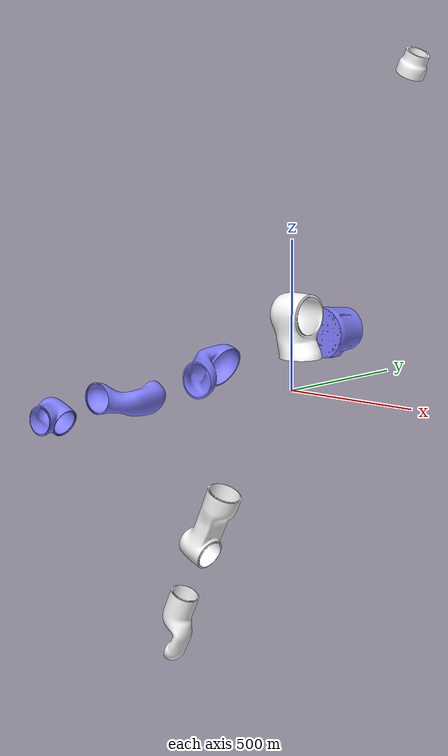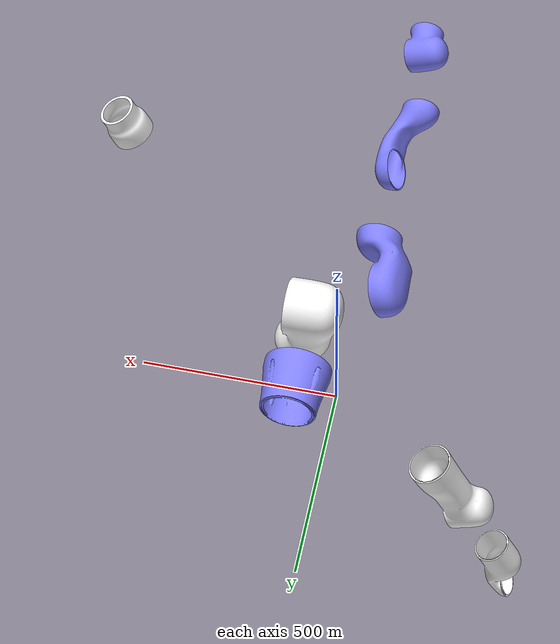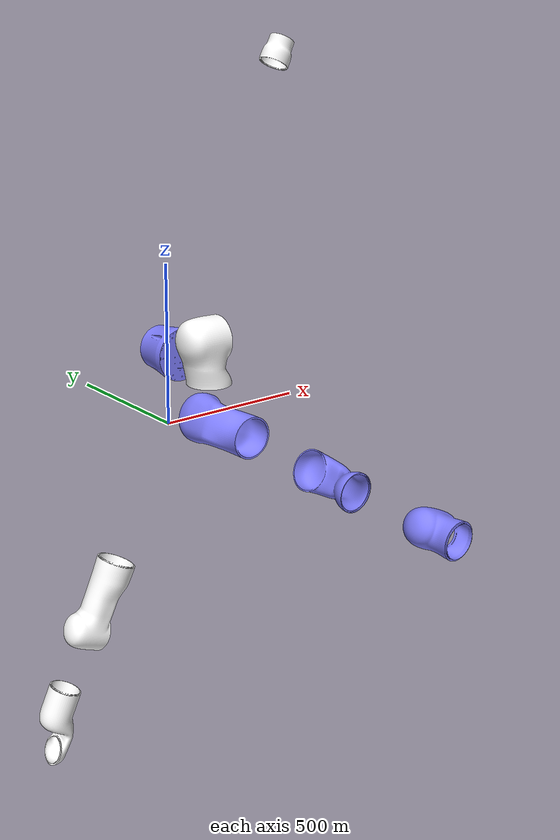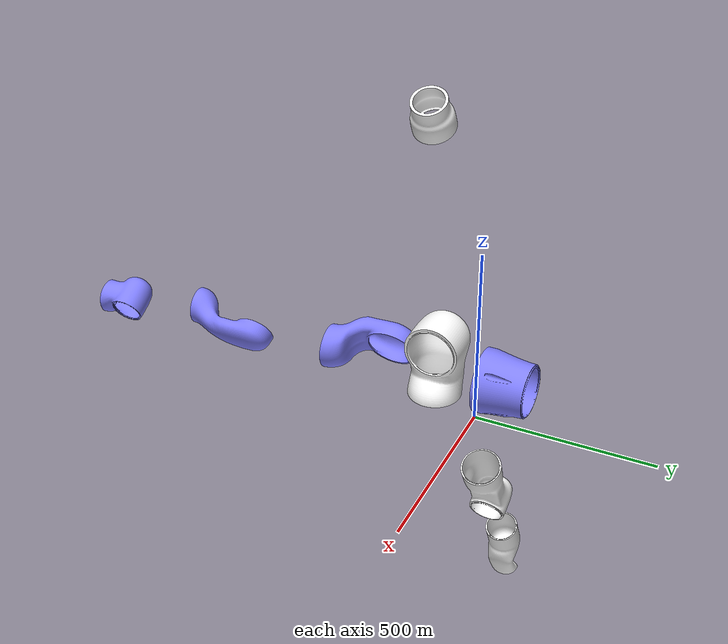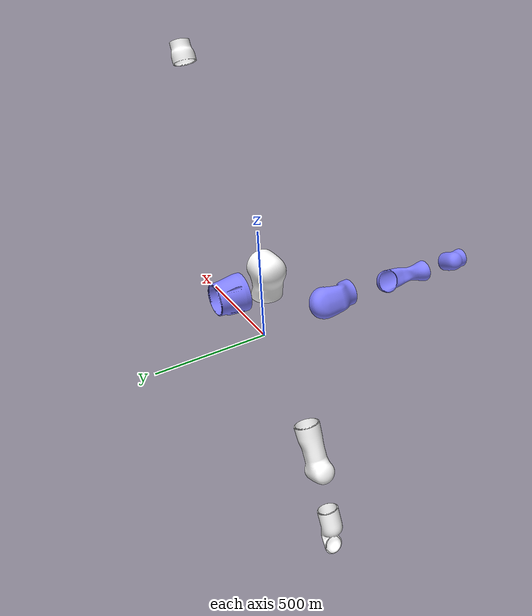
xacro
<?xml version="1.0"?>
<robot name="optimo" xmlns:xacro="http://www.ros.org/wiki/xacro">

    <!-- Include the URDF of the robot arm -->
    <xacro:include filename="optimo_xacro/optimo_arm.xacro" />

    <!-- Include gz configuration -->

</robot>

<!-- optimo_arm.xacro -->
<robot xmlns:xacro="http://www.ros.org/wiki/xacro">

    <!-- PI Parameters -->
    <xacro:property name="PI" value="3.1415926535897931"/>
    <xacro:property name="DtR" value=".01745329251"/>

    <!-- Color Parameters -->
    <material name="white">
        <color rgba="1.0 1.0 1.0 1.0"/>
    </material>

    <material name="blue">
        <color rgba="0.5 0.5 1 1.0"/>
    </material>

    <!-- Optimo Robot Arm Links -->

    <link name="optimo_base_link">
    </link>

    <joint name="optimo_base_joint" type="fixed">
        <parent link="optimo_base_link"/>
        <child link="optimo_link0"/>
        <origin xyz="0 0 0.27" rpy="0 0 0"/>
    </joint>

    <link name="optimo_link0">
        <visual>
            <geometry>
                <mesh filename="file://$(find optimo_description)/meshes/link0.stl"/>
            </geometry>
            <material name="blue"/>
        </visual>
        <collision>
            <geometry>
                <mesh filename="file://$(find optimo_description)/meshes/col0.stl"/>
            </geometry>

        </collision>
        <inertial>            <!-- Doesn't matter, just placeholder values -->
            <origin xyz="0 0 0" />
            <mass value="1"/>
            <inertia ixx="0" ixy="0.0" ixz="0.0" iyy="0" iyz="0.0" izz="0"/>
        </inertial>
    </link>

    <link name="optimo_link1"/>
    <link name="optimo_link1_passive">
        <visual>
            <geometry>
                <mesh filename="file://$(find optimo_description)/meshes/link1.stl"/>
            </geometry>
            <material name="white"/>
        </visual>
        <collision>
            <geometry>
                <mesh filename="file://$(find optimo_description)/meshes/col1.stl"/>
            </geometry>
        </collision>
        <inertial>
            <origin xyz="0 -0.01635 0.01549" />
            <mass value="4.152"/>
            <inertia ixx="0.01" ixy="0.000017" ixz="-.00001" iyy="0.007494" iyz="0.0000213" izz="0.009939"/>
        </inertial>
    </link>

    <link name="optimo_link2"/>
    <link name="optimo_link2_passive">
        <visual>
            <geometry>
                <mesh filename="file://$(find optimo_description)/meshes/link2.stl"/>
            </geometry>
            <material name="blue"/>
        </visual>
        <collision>
            <geometry>
                <mesh filename="file://$(find optimo_description)/meshes/col2.stl"/>
            </geometry>
        </collision>
        <inertial>
            <origin xyz="0 -0.05063 0.05677"  rpy="0 0 ${180*DtR}"/>
            <mass value="1.72"/>

                <inertia ixx="0.005694" ixy="0" ixz="0" iyy="0.005902" iyz="-0.001353" izz="0.002415"/>

        </inertial>
    </link>

    <link name="optimo_link3"/>
    <link name="optimo_link3_passive">
        <visual>
            <geometry>
                <mesh filename="file://$(find optimo_description)/meshes/link3.stl"/>
            </geometry>
            <material name="white"/>
        </visual>

        <collision>
            <geometry>
                <mesh filename="file://$(find optimo_description)/meshes/col3.stl"/>
            </geometry>
        </collision>
        <inertial>            <!-- Inertia values taken from yaml, but these seem like they cannot be accurate...-->
            <origin xyz="-0.000039 .098 0"/>
            <mass value="4.310"/>
            <inertia ixx="0.012989" ixy="-0.000015" ixz="-.000003" iyy="0.002584" iyz="0.000632" izz="0.01305"/>
        </inertial>
    </link>

    <link name="optimo_link4"/>
    <link name="optimo_link4_passive">
        <origin xyz="0 0 0" rpy="0 0 0"/>
        <visual>
            <geometry>
                <mesh filename="file://$(find optimo_description)/meshes/link4.stl"/>
            </geometry>
            <material name="blue"/>
        </visual>

        <collision>
            <geometry>
                <mesh filename="file://$(find optimo_description)/meshes/col4.stl"/>
            </geometry>
        </collision>
        <inertial>
            <origin xyz="-.00001 0.048852 0.0688" rpy="0 0 0"/>
            <mass value="1.09"/>
                <inertia ixx="0.007" ixy="-3.989e-7" ixz="0.002" iyy="0.007" iyz="-1.061e-6" izz="0.002"/>

        </inertial>
    </link>

    <link name="optimo_link5"/>
    <link name="optimo_link5_passive">
        <visual>
            <geometry>
                <mesh filename="file://$(find optimo_description)/meshes/link5.stl"/>
            </geometry>
            <material name="white"/>
        </visual>

        <collision>
            <geometry>
                <mesh filename="file://$(find optimo_description)/meshes/col5.stl"/>
            </geometry>
        </collision>
        <inertial>
            <origin xyz=".001262 0.085 0.008" />
            <mass value="2.23"/>
            <inertia ixx="0.000932" ixy="0" ixz="0" iyy="0.000802" iyz="-0.000030" izz="0.000733"/>
        </inertial>
    </link>

    <link name="optimo_link6"/>
    <link name="optimo_link6_passive">
        <visual>
            <geometry>
                <mesh filename="file://$(find optimo_description)/meshes/link6.stl"/>
            </geometry>
            <material name="blue"/>
        </visual>
        <collision>
            <geometry>
                <mesh filename="file://$(find optimo_description)/meshes/col6.stl"/>
            </geometry>
        </collision>
        <inertial>
            <origin xyz="0 -0.00007 0.010855" />
            <mass value="1.138"/>
            <inertia ixx="0.000932" ixy="0" ixz="0" iyy="0.000802" iyz="-0.000030" izz="0.0007325"/>
        </inertial>
    </link>

    <link name="optimo_link7"/>
    <link name="optimo_link7_passive">
        <visual>
            <geometry>
                <mesh filename="file://$(find optimo_description)/meshes/link7.stl"/>
            </geometry>
            <material name="white"/>
        </visual>
        <collision>
            <geometry>
                <mesh filename="file://$(find optimo_description)/meshes/col7.stl"/>
            </geometry>
        </collision>
        <inertial>
            <origin xyz="0 0 0" />
            <mass value="1"/>
            <inertia ixx="0.005541" ixy=".000045" ixz="0.000077" iyy="0.004779" iyz="0.000043" izz="0.001723"/>

        </inertial>
    </link>

    <!-- Optimo Robot Joints -->

    <joint name="optimo_joint1" type="revolute">
        <origin xyz="0 0 0" rpy="0 0 0"/>
        <parent link="optimo_link0"/>
        <child link="optimo_link1"/>
        <axis xyz="0 0 1"/>
        <limit lower="${DtR*-164}" upper="${DtR*167}" effort="79" velocity="10"/>
        <dynamics damping="1" friction="0.1"/>
    </joint>

    <joint name="optimo_joint1_passive" type="fixed">
        <origin xyz="0 0 0" rpy="${PI/2} 0 0"/>
        <parent link="optimo_link1"/>
        <child link="optimo_link1_passive"/>
    </joint>

    <joint name="optimo_joint2" type="revolute">
        <origin xyz="0 0 0" rpy="0 0 0"/>
        <parent link="optimo_link1_passive"/>
        <child link="optimo_link2"/>
        <axis xyz="0 0 1"/>
        <limit lower="${DtR*60}" upper="${DtR*250}" effort="95" velocity="10"/>
        <dynamics damping="1" friction="0.1"/>
    </joint>

    <joint name="optimo_joint2_passive" type="fixed">
        <origin xyz="0 0 0" rpy="${PI/2} 0 0"/>
        <parent link="optimo_link2"/>
        <child link="optimo_link2_passive"/>
    </joint>

    <joint name="optimo_joint3" type="revolute">
        <origin xyz="0 0 0.4" rpy="0 0 0"/>
        <parent link="optimo_link2_passive"/>
        <child link="optimo_link3"/>
        <axis xyz="0 0 1"/>
        <limit lower="${DtR*-167}" upper="${DtR*163}" effort="32" velocity="10"/>
        <dynamics damping="1" friction="0.1"/>
    </joint>
    <joint name="optimo_joint3_passive" type="fixed">
        <origin xyz="0 0 0" rpy="-${PI/2} 0 0"/>
        <parent link="optimo_link3"/>
        <child link="optimo_link3_passive"/>
    </joint>

    <joint name="optimo_joint4" type="revolute">
        <origin xyz="0 0 0" rpy="0 0 0"/>
        <parent link="optimo_link3_passive"/>
        <child link="optimo_link4"/>
        <axis xyz="0 0 1"/>
        <limit lower="${DtR*-145}" upper="${DtR*145}" effort="40" velocity="10"/>
        <dynamics damping="1" friction="0.1"/>
    </joint>
    <joint name="optimo_joint4_passive" type="fixed">
        <origin xyz="0 0 0" rpy="${PI/2} 0 0"/>
        <parent link="optimo_link4"/>
        <child link="optimo_link4_passive"/>
    </joint>

    <joint name="optimo_joint5" type="revolute">
        <origin xyz="0 0 0.4" rpy="0 0 0"/>
        <parent link="optimo_link4_passive"/>
        <child link="optimo_link5"/>
        <axis xyz="0 0 1"/>
        <limit lower="${DtR*-170}" upper="${DtR*170}" effort="15" velocity="10"/>
        <dynamics damping="1" friction="0.1"/>
    </joint>
    <joint name="optimo_joint5_passive" type="fixed">
        <origin xyz="0 0 0" rpy="-${PI/2} 0 0"/>
        <parent link="optimo_link5"/>
        <child link="optimo_link5_passive"/>
    </joint>

    <joint name="optimo_joint6" type="revolute">
        <origin xyz="0 0 0" rpy="0 0 0"/>
        <parent link="optimo_link5_passive"/>
        <child link="optimo_link6"/>
        <axis xyz="0 0 1"/>
        <limit lower="${DtR*-120}" upper="${DtR*120}" effort="15" velocity="10"/>
        <dynamics damping="1" friction="0.1"/>
    </joint>
    <joint name="optimo_joint6_passive" type="fixed">
        <origin xyz="0 0 0" rpy="${PI/2} 0 0"/>
        <parent link="optimo_link6"/>
        <child link="optimo_link6_passive"/>
    </joint>

    <joint name="optimo_joint7" type="revolute">
        <origin xyz="0 0 0" rpy="0 0 0"/>
        <parent link="optimo_link6_passive"/>
        <child link="optimo_link7"/>
        <axis xyz="0 0 1"/>
        <limit lower="${DtR*-152}" upper="${DtR*188}" effort="15" velocity="10"/>
        <dynamics damping="1" friction="0.1"/>
    </joint>
    <joint name="optimo_joint7_passive" type="fixed">
        <origin xyz="0 0 0" rpy="${PI/2} 0 0"/>
        <parent link="optimo_link7"/>
        <child link="optimo_link7_passive"/>
    </joint>

</robot>
